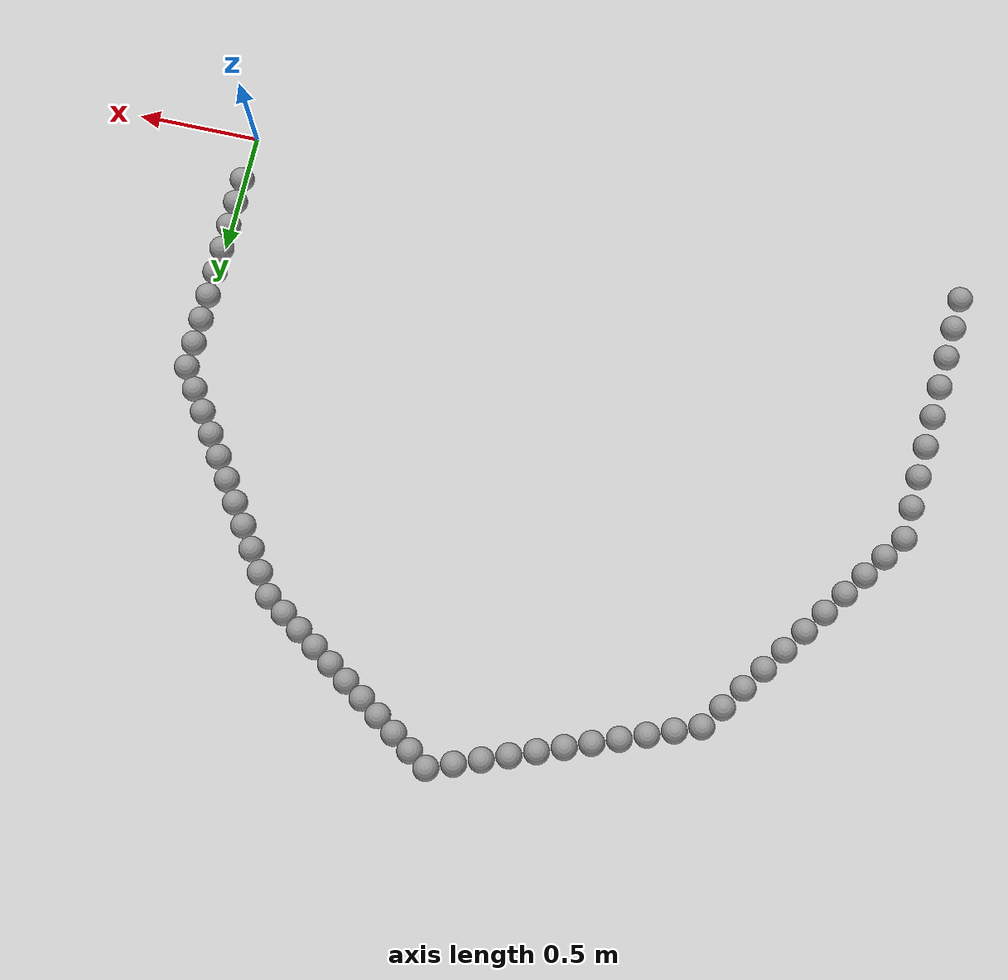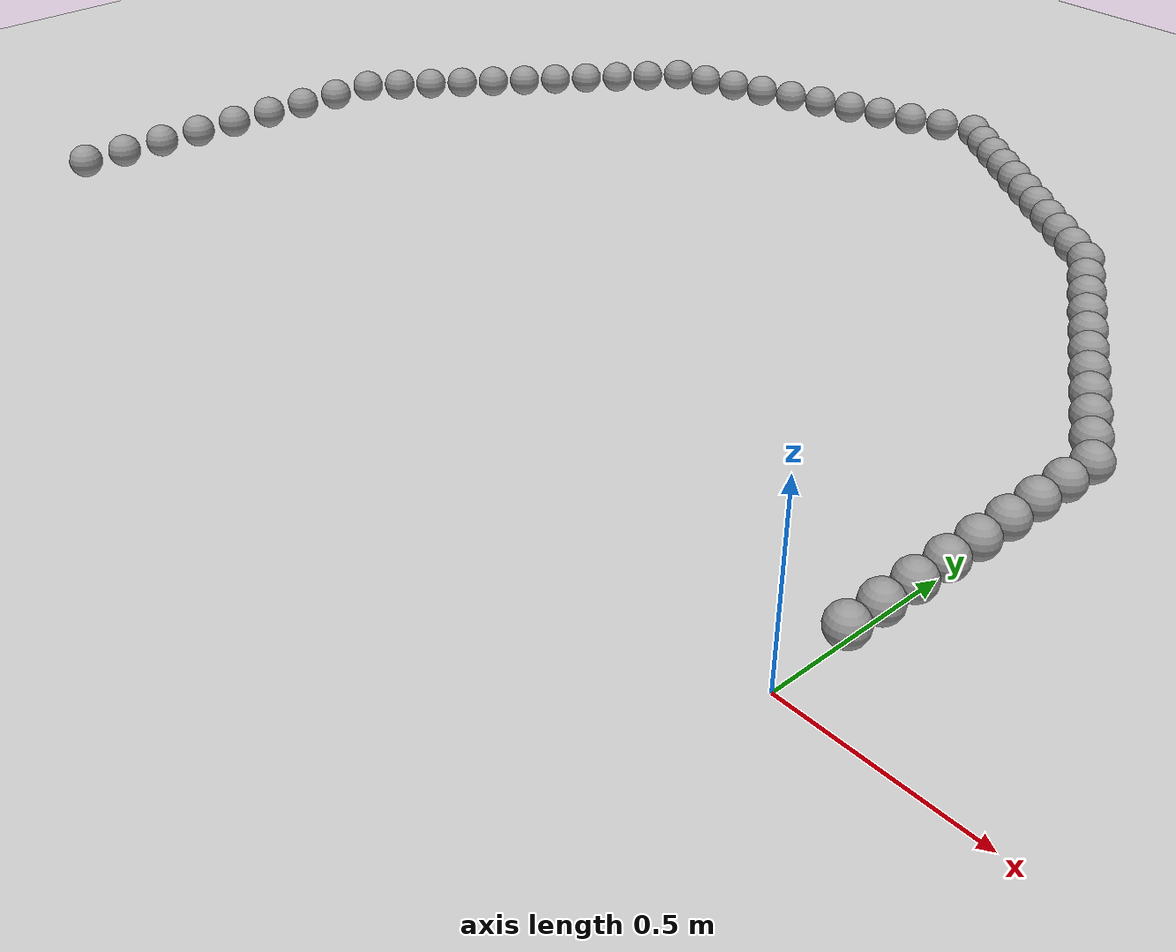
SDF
<sdf version="1.6">
 <world name="default">
  <model name="ground_plane">
   <static>1</static>
   <link name="link">
    <collision name="collision">
     <geometry><plane><normal>0 0 1</normal><size>100 100</size></plane></geometry>
     <surface><friction><ode><mu>100</mu><mu2>50</mu2></ode></friction></surface>
    </collision>
    <visual name="visual">
     <cast_shadows>0</cast_shadows>
     <geometry><plane><normal>0 0 1</normal><size>100 100</size></plane></geometry>
     <material>
      <script><uri>file://media/materials/scripts/gazebo.material</uri><name>Gazebo/Grey</name></script>
     </material>
    </visual>
   </link>
  </model>
  <model name="unit_sphere_0_2">
   <pose>0.002000 0.208000 0.050000 0 -0 0</pose>
   <link name="link">
    <inertial>
     <mass>1</mass>
     <inertia><ixx>0.1</ixx><ixy>0</ixy><ixz>0</ixz><iyy>0.1</iyy><iyz>0</iyz><izz>0.1</izz></inertia>
    </inertial>
    <collision name="collision"><geometry><sphere><radius>0.050000</radius></sphere></geometry></collision>
    <visual name="visual">
     <geometry><sphere><radius>0.050000</radius></sphere></geometry>
     <material>
      <script><name>Gazebo/Grey</name><uri>file://media/materials/scripts/gazebo.material</uri></script>
     </material>
    </visual>
   </link>
  </model>
  <model name="unit_sphere_0_3">
   <pose>0.003000 0.312000 0.050000 0 -0 0</pose>
   <link name="link">
    <inertial>
     <mass>1</mass>
     <inertia><ixx>0.1</ixx><ixy>0</ixy><ixz>0</ixz><iyy>0.1</iyy><iyz>0</iyz><izz>0.1</izz></inertia>
    </inertial>
    <collision name="collision"><geometry><sphere><radius>0.050000</radius></sphere></geometry></collision>
    <visual name="visual">
     <geometry><sphere><radius>0.050000</radius></sphere></geometry>
     <material>
      <script><name>Gazebo/Grey</name><uri>file://media/materials/scripts/gazebo.material</uri></script>
     </material>
    </visual>
   </link>
  </model>
  <model name="unit_sphere_0_4">
   <pose>0.004000 0.416000 0.050000 0 -0 0</pose>
   <link name="link">
    <inertial>
     <mass>1</mass>
     <inertia><ixx>0.1</ixx><ixy>0</ixy><ixz>0</ixz><iyy>0.1</iyy><iyz>0</iyz><izz>0.1</izz></inertia>
    </inertial>
    <collision name="collision"><geometry><sphere><radius>0.050000</radius></sphere></geometry></collision>
    <visual name="visual">
     <geometry><sphere><radius>0.050000</radius></sphere></geometry>
     <material>
      <script><name>Gazebo/Grey</name><uri>file://media/materials/scripts/gazebo.material</uri></script>
     </material>
    </visual>
   </link>
  </model>
  <model name="unit_sphere_0_5">
   <pose>0.005000 0.520000 0.050000 0 -0 0</pose>
   <link name="link">
    <inertial>
     <mass>1</mass>
     <inertia><ixx>0.1</ixx><ixy>0</ixy><ixz>0</ixz><iyy>0.1</iyy><iyz>0</iyz><izz>0.1</izz></inertia>
    </inertial>
    <collision name="collision"><geometry><sphere><radius>0.050000</radius></sphere></geometry></collision>
    <visual name="visual">
     <geometry><sphere><radius>0.050000</radius></sphere></geometry>
     <material>
      <script><name>Gazebo/Grey</name><uri>file://media/materials/scripts/gazebo.material</uri></script>
     </material>
    </visual>
   </link>
  </model>
  <model name="unit_sphere_0_6">
   <pose>0.006000 0.624000 0.050000 0 -0 0</pose>
   <link name="link">
    <inertial>
     <mass>1</mass>
     <inertia><ixx>0.1</ixx><ixy>0</ixy><ixz>0</ixz><iyy>0.1</iyy><iyz>0</iyz><izz>0.1</izz></inertia>
    </inertial>
    <collision name="collision"><geometry><sphere><radius>0.050000</radius></sphere></geometry></collision>
    <visual name="visual">
     <geometry><sphere><radius>0.050000</radius></sphere></geometry>
     <material>
      <script><name>Gazebo/Grey</name><uri>file://media/materials/scripts/gazebo.material</uri></script>
     </material>
    </visual>
   </link>
  </model>
  <model name="unit_sphere_0_7">
   <pose>0.007000 0.728000 0.050000 0 -0 0</pose>
   <link name="link">
    <inertial>
     <mass>1</mass>
     <inertia><ixx>0.1</ixx><ixy>0</ixy><ixz>0</ixz><iyy>0.1</iyy><iyz>0</iyz><izz>0.1</izz></inertia>
    </inertial>
    <collision name="collision"><geometry><sphere><radius>0.050000</radius></sphere></geometry></collision>
    <visual name="visual">
     <geometry><sphere><radius>0.050000</radius></sphere></geometry>
     <material>
      <script><name>Gazebo/Grey</name><uri>file://media/materials/scripts/gazebo.material</uri></script>
     </material>
    </visual>
   </link>
  </model>
  <model name="unit_sphere_0_8">
   <pose>0.008000 0.832000 0.050000 0 -0 0</pose>
   <link name="link">
    <inertial>
     <mass>1</mass>
     <inertia><ixx>0.1</ixx><ixy>0</ixy><ixz>0</ixz><iyy>0.1</iyy><iyz>0</iyz><izz>0.1</izz></inertia>
    </inertial>
    <collision name="collision"><geometry><sphere><radius>0.050000</radius></sphere></geometry></collision>
    <visual name="visual">
     <geometry><sphere><radius>0.050000</radius></sphere></geometry>
     <material>
      <script><name>Gazebo/Grey</name><uri>file://media/materials/scripts/gazebo.material</uri></script>
     </material>
    </visual>
   </link>
  </model>
  <model name="unit_sphere_0_9">
   <pose>0.009000 0.936000 0.050000 0 -0 0</pose>
   <link name="link">
    <inertial>
     <mass>1</mass>
     <inertia><ixx>0.1</ixx><ixy>0</ixy><ixz>0</ixz><iyy>0.1</iyy><iyz>0</iyz><izz>0.1</izz></inertia>
    </inertial>
    <collision name="collision"><geometry><sphere><radius>0.050000</radius></sphere></geometry></collision>
    <visual name="visual">
     <geometry><sphere><radius>0.050000</radius></sphere></geometry>
     <material>
      <script><name>Gazebo/Grey</name><uri>file://media/materials/scripts/gazebo.material</uri></script>
     </material>
    </visual>
   </link>
  </model>
  <model name="unit_sphere_0_10">
   <pose>0.010000 1.040000 0.050000 0 -0 0</pose>
   <link name="link">
    <inertial>
     <mass>1</mass>
     <inertia><ixx>0.1</ixx><ixy>0</ixy><ixz>0</ixz><iyy>0.1</iyy><iyz>0</iyz><izz>0.1</izz></inertia>
    </inertial>
    <collision name="collision"><geometry><sphere><radius>0.050000</radius></sphere></geometry></collision>
    <visual name="visual">
     <geometry><sphere><radius>0.050000</radius></sphere></geometry>
     <material>
      <script><name>Gazebo/Grey</name><uri>file://media/materials/scripts/gazebo.material</uri></script>
     </material>
    </visual>
   </link>
  </model>
  <model name="unit_sphere_0_11">
   <pose>-0.045000 1.123000 0.050000 0 -0 0</pose>
   <link name="link">
    <inertial>
     <mass>1</mass>
     <inertia><ixx>0.1</ixx><ixy>0</ixy><ixz>0</ixz><iyy>0.1</iyy><iyz>0</iyz><izz>0.1</izz></inertia>
    </inertial>
    <collision name="collision"><geometry><sphere><radius>0.050000</radius></sphere></geometry></collision>
    <visual name="visual">
     <geometry><sphere><radius>0.050000</radius></sphere></geometry>
     <material>
      <script><name>Gazebo/Grey</name><uri>file://media/materials/scripts/gazebo.material</uri></script>
     </material>
    </visual>
   </link>
  </model>
  <model name="unit_sphere_0_12">
   <pose>-0.100000 1.206000 0.050000 0 -0 0</pose>
   <link name="link">
    <inertial>
     <mass>1</mass>
     <inertia><ixx>0.1</ixx><ixy>0</ixy><ixz>0</ixz><iyy>0.1</iyy><iyz>0</iyz><izz>0.1</izz></inertia>
    </inertial>
    <collision name="collision"><geometry><sphere><radius>0.050000</radius></sphere></geometry></collision>
    <visual name="visual">
     <geometry><sphere><radius>0.050000</radius></sphere></geometry>
     <material>
      <script><name>Gazebo/Grey</name><uri>file://media/materials/scripts/gazebo.material</uri></script>
     </material>
    </visual>
   </link>
  </model>
  <model name="unit_sphere_0_13">
   <pose>-0.155000 1.289000 0.050000 0 -0 0</pose>
   <link name="link">
    <inertial>
     <mass>1</mass>
     <inertia><ixx>0.1</ixx><ixy>0</ixy><ixz>0</ixz><iyy>0.1</iyy><iyz>0</iyz><izz>0.1</izz></inertia>
    </inertial>
    <collision name="collision"><geometry><sphere><radius>0.050000</radius></sphere></geometry></collision>
    <visual name="visual">
     <geometry><sphere><radius>0.050000</radius></sphere></geometry>
     <material>
      <script><name>Gazebo/Grey</name><uri>file://media/materials/scripts/gazebo.material</uri></script>
     </material>
    </visual>
   </link>
  </model>
  <model name="unit_sphere_0_14">
   <pose>-0.210000 1.372000 0.050000 0 -0 0</pose>
   <link name="link">
    <inertial>
     <mass>1</mass>
     <inertia><ixx>0.1</ixx><ixy>0</ixy><ixz>0</ixz><iyy>0.1</iyy><iyz>0</iyz><izz>0.1</izz></inertia>
    </inertial>
    <collision name="collision"><geometry><sphere><radius>0.050000</radius></sphere></geometry></collision>
    <visual name="visual">
     <geometry><sphere><radius>0.050000</radius></sphere></geometry>
     <material>
      <script><name>Gazebo/Grey</name><uri>file://media/materials/scripts/gazebo.material</uri></script>
     </material>
    </visual>
   </link>
  </model>
  <model name="unit_sphere_0_15">
   <pose>-0.265000 1.455000 0.050000 0 -0 0</pose>
   <link name="link">
    <inertial>
     <mass>1</mass>
     <inertia><ixx>0.1</ixx><ixy>0</ixy><ixz>0</ixz><iyy>0.1</iyy><iyz>0</iyz><izz>0.1</izz></inertia>
    </inertial>
    <collision name="collision"><geometry><sphere><radius>0.050000</radius></sphere></geometry></collision>
    <visual name="visual">
     <geometry><sphere><radius>0.050000</radius></sphere></geometry>
     <material>
      <script><name>Gazebo/Grey</name><uri>file://media/materials/scripts/gazebo.material</uri></script>
     </material>
    </visual>
   </link>
  </model>
  <model name="unit_sphere_0_16">
   <pose>-0.320000 1.538000 0.050000 0 -0 0</pose>
   <link name="link">
    <inertial>
     <mass>1</mass>
     <inertia><ixx>0.1</ixx><ixy>0</ixy><ixz>0</ixz><iyy>0.1</iyy><iyz>0</iyz><izz>0.1</izz></inertia>
    </inertial>
    <collision name="collision"><geometry><sphere><radius>0.050000</radius></sphere></geometry></collision>
    <visual name="visual">
     <geometry><sphere><radius>0.050000</radius></sphere></geometry>
     <material>
      <script><name>Gazebo/Grey</name><uri>file://media/materials/scripts/gazebo.material</uri></script>
     </material>
    </visual>
   </link>
  </model>
  <model name="unit_sphere_0_17">
   <pose>-0.375000 1.621000 0.050000 0 -0 0</pose>
   <link name="link">
    <inertial>
     <mass>1</mass>
     <inertia><ixx>0.1</ixx><ixy>0</ixy><ixz>0</ixz><iyy>0.1</iyy><iyz>0</iyz><izz>0.1</izz></inertia>
    </inertial>
    <collision name="collision"><geometry><sphere><radius>0.050000</radius></sphere></geometry></collision>
    <visual name="visual">
     <geometry><sphere><radius>0.050000</radius></sphere></geometry>
     <material>
      <script><name>Gazebo/Grey</name><uri>file://media/materials/scripts/gazebo.material</uri></script>
     </material>
    </visual>
   </link>
  </model>
  <model name="unit_sphere_0_18">
   <pose>-0.430000 1.704000 0.050000 0 -0 0</pose>
   <link name="link">
    <inertial>
     <mass>1</mass>
     <inertia><ixx>0.1</ixx><ixy>0</ixy><ixz>0</ixz><iyy>0.1</iyy><iyz>0</iyz><izz>0.1</izz></inertia>
    </inertial>
    <collision name="collision"><geometry><sphere><radius>0.050000</radius></sphere></geometry></collision>
    <visual name="visual">
     <geometry><sphere><radius>0.050000</radius></sphere></geometry>
     <material>
      <script><name>Gazebo/Grey</name><uri>file://media/materials/scripts/gazebo.material</uri></script>
     </material>
    </visual>
   </link>
  </model>
  <model name="unit_sphere_0_19">
   <pose>-0.485000 1.787000 0.050000 0 -0 0</pose>
   <link name="link">
    <inertial>
     <mass>1</mass>
     <inertia><ixx>0.1</ixx><ixy>0</ixy><ixz>0</ixz><iyy>0.1</iyy><iyz>0</iyz><izz>0.1</izz></inertia>
    </inertial>
    <collision name="collision"><geometry><sphere><radius>0.050000</radius></sphere></geometry></collision>
    <visual name="visual">
     <geometry><sphere><radius>0.050000</radius></sphere></geometry>
     <material>
      <script><name>Gazebo/Grey</name><uri>file://media/materials/scripts/gazebo.material</uri></script>
     </material>
    </visual>
   </link>
  </model>
  <model name="unit_sphere_0_20">
   <pose>-0.540000 1.870000 0.050000 0 -0 0</pose>
   <link name="link">
    <inertial>
     <mass>1</mass>
     <inertia><ixx>0.1</ixx><ixy>0</ixy><ixz>0</ixz><iyy>0.1</iyy><iyz>0</iyz><izz>0.1</izz></inertia>
    </inertial>
    <collision name="collision"><geometry><sphere><radius>0.050000</radius></sphere></geometry></collision>
    <visual name="visual">
     <geometry><sphere><radius>0.050000</radius></sphere></geometry>
     <material>
      <script><name>Gazebo/Grey</name><uri>file://media/materials/scripts/gazebo.material</uri></script>
     </material>
    </visual>
   </link>
  </model>
  <model name="unit_sphere_0_21">
   <pose>-0.614000 1.921000 0.050000 0 -0 0</pose>
   <link name="link">
    <inertial>
     <mass>1</mass>
     <inertia><ixx>0.1</ixx><ixy>0</ixy><ixz>0</ixz><iyy>0.1</iyy><iyz>0</iyz><izz>0.1</izz></inertia>
    </inertial>
    <collision name="collision"><geometry><sphere><radius>0.050000</radius></sphere></geometry></collision>
    <visual name="visual">
     <geometry><sphere><radius>0.050000</radius></sphere></geometry>
     <material>
      <script><name>Gazebo/Grey</name><uri>file://media/materials/scripts/gazebo.material</uri></script>
     </material>
    </visual>
   </link>
  </model>
  <model name="unit_sphere_0_22">
   <pose>-0.688000 1.972000 0.050000 0 -0 0</pose>
   <link name="link">
    <inertial>
     <mass>1</mass>
     <inertia><ixx>0.1</ixx><ixy>0</ixy><ixz>0</ixz><iyy>0.1</iyy><iyz>0</iyz><izz>0.1</izz></inertia>
    </inertial>
    <collision name="collision"><geometry><sphere><radius>0.050000</radius></sphere></geometry></collision>
    <visual name="visual">
     <geometry><sphere><radius>0.050000</radius></sphere></geometry>
     <material>
      <script><name>Gazebo/Grey</name><uri>file://media/materials/scripts/gazebo.material</uri></script>
     </material>
    </visual>
   </link>
  </model>
  <model name="unit_sphere_0_23">
   <pose>-0.762000 2.023000 0.050000 0 -0 0</pose>
   <link name="link">
    <inertial>
     <mass>1</mass>
     <inertia><ixx>0.1</ixx><ixy>0</ixy><ixz>0</ixz><iyy>0.1</iyy><iyz>0</iyz><izz>0.1</izz></inertia>
    </inertial>
    <collision name="collision"><geometry><sphere><radius>0.050000</radius></sphere></geometry></collision>
    <visual name="visual">
     <geometry><sphere><radius>0.050000</radius></sphere></geometry>
     <material>
      <script><name>Gazebo/Grey</name><uri>file://media/materials/scripts/gazebo.material</uri></script>
     </material>
    </visual>
   </link>
  </model>
  <model name="unit_sphere_0_24">
   <pose>-0.836000 2.074000 0.050000 0 -0 0</pose>
   <link name="link">
    <inertial>
     <mass>1</mass>
     <inertia><ixx>0.1</ixx><ixy>0</ixy><ixz>0</ixz><iyy>0.1</iyy><iyz>0</iyz><izz>0.1</izz></inertia>
    </inertial>
    <collision name="collision"><geometry><sphere><radius>0.050000</radius></sphere></geometry></collision>
    <visual name="visual">
     <geometry><sphere><radius>0.050000</radius></sphere></geometry>
     <material>
      <script><name>Gazebo/Grey</name><uri>file://media/materials/scripts/gazebo.material</uri></script>
     </material>
    </visual>
   </link>
  </model>
  <model name="unit_sphere_0_25">
   <pose>-0.910000 2.125000 0.050000 0 -0 0</pose>
   <link name="link">
    <inertial>
     <mass>1</mass>
     <inertia><ixx>0.1</ixx><ixy>0</ixy><ixz>0</ixz><iyy>0.1</iyy><iyz>0</iyz><izz>0.1</izz></inertia>
    </inertial>
    <collision name="collision"><geometry><sphere><radius>0.050000</radius></sphere></geometry></collision>
    <visual name="visual">
     <geometry><sphere><radius>0.050000</radius></sphere></geometry>
     <material>
      <script><name>Gazebo/Grey</name><uri>file://media/materials/scripts/gazebo.material</uri></script>
     </material>
    </visual>
   </link>
  </model>
  <model name="unit_sphere_0_26">
   <pose>-0.984000 2.176000 0.050000 0 -0 0</pose>
   <link name="link">
    <inertial>
     <mass>1</mass>
     <inertia><ixx>0.1</ixx><ixy>0</ixy><ixz>0</ixz><iyy>0.1</iyy><iyz>0</iyz><izz>0.1</izz></inertia>
    </inertial>
    <collision name="collision"><geometry><sphere><radius>0.050000</radius></sphere></geometry></collision>
    <visual name="visual">
     <geometry><sphere><radius>0.050000</radius></sphere></geometry>
     <material>
      <script><name>Gazebo/Grey</name><uri>file://media/materials/scripts/gazebo.material</uri></script>
     </material>
    </visual>
   </link>
  </model>
  <model name="unit_sphere_0_27">
   <pose>-1.058000 2.227000 0.050000 0 -0 0</pose>
   <link name="link">
    <inertial>
     <mass>1</mass>
     <inertia><ixx>0.1</ixx><ixy>0</ixy><ixz>0</ixz><iyy>0.1</iyy><iyz>0</iyz><izz>0.1</izz></inertia>
    </inertial>
    <collision name="collision"><geometry><sphere><radius>0.050000</radius></sphere></geometry></collision>
    <visual name="visual">
     <geometry><sphere><radius>0.050000</radius></sphere></geometry>
     <material>
      <script><name>Gazebo/Grey</name><uri>file://media/materials/scripts/gazebo.material</uri></script>
     </material>
    </visual>
   </link>
  </model>
  <model name="unit_sphere_0_28">
   <pose>-1.132000 2.278000 0.050000 0 -0 0</pose>
   <link name="link">
    <inertial>
     <mass>1</mass>
     <inertia><ixx>0.1</ixx><ixy>0</ixy><ixz>0</ixz><iyy>0.1</iyy><iyz>0</iyz><izz>0.1</izz></inertia>
    </inertial>
    <collision name="collision"><geometry><sphere><radius>0.050000</radius></sphere></geometry></collision>
    <visual name="visual">
     <geometry><sphere><radius>0.050000</radius></sphere></geometry>
     <material>
      <script><name>Gazebo/Grey</name><uri>file://media/materials/scripts/gazebo.material</uri></script>
     </material>
    </visual>
   </link>
  </model>
  <model name="unit_sphere_0_29">
   <pose>-1.206000 2.329000 0.050000 0 -0 0</pose>
   <link name="link">
    <inertial>
     <mass>1</mass>
     <inertia><ixx>0.1</ixx><ixy>0</ixy><ixz>0</ixz><iyy>0.1</iyy><iyz>0</iyz><izz>0.1</izz></inertia>
    </inertial>
    <collision name="collision"><geometry><sphere><radius>0.050000</radius></sphere></geometry></collision>
    <visual name="visual">
     <geometry><sphere><radius>0.050000</radius></sphere></geometry>
     <material>
      <script><name>Gazebo/Grey</name><uri>file://media/materials/scripts/gazebo.material</uri></script>
     </material>
    </visual>
   </link>
  </model>
  <model name="unit_sphere_0_30">
   <pose>-1.280000 2.380000 0.050000 0 -0 0</pose>
   <link name="link">
    <inertial>
     <mass>1</mass>
     <inertia><ixx>0.1</ixx><ixy>0</ixy><ixz>0</ixz><iyy>0.1</iyy><iyz>0</iyz><izz>0.1</izz></inertia>
    </inertial>
    <collision name="collision"><geometry><sphere><radius>0.050000</radius></sphere></geometry></collision>
    <visual name="visual">
     <geometry><sphere><radius>0.050000</radius></sphere></geometry>
     <material>
      <script><name>Gazebo/Grey</name><uri>file://media/materials/scripts/gazebo.material</uri></script>
     </material>
    </visual>
   </link>
  </model>
  <model name="unit_sphere_0_31">
   <pose>-1.378000 2.343000 0.050000 0 -0 0</pose>
   <link name="link">
    <inertial>
     <mass>1</mass>
     <inertia><ixx>0.1</ixx><ixy>0</ixy><ixz>0</ixz><iyy>0.1</iyy><iyz>0</iyz><izz>0.1</izz></inertia>
    </inertial>
    <collision name="collision"><geometry><sphere><radius>0.050000</radius></sphere></geometry></collision>
    <visual name="visual">
     <geometry><sphere><radius>0.050000</radius></sphere></geometry>
     <material>
      <script><name>Gazebo/Grey</name><uri>file://media/materials/scripts/gazebo.material</uri></script>
     </material>
    </visual>
   </link>
  </model>
  <model name="unit_sphere_0_32">
   <pose>-1.476000 2.306000 0.050000 0 -0 0</pose>
   <link name="link">
    <inertial>
     <mass>1</mass>
     <inertia><ixx>0.1</ixx><ixy>0</ixy><ixz>0</ixz><iyy>0.1</iyy><iyz>0</iyz><izz>0.1</izz></inertia>
    </inertial>
    <collision name="collision"><geometry><sphere><radius>0.050000</radius></sphere></geometry></collision>
    <visual name="visual">
     <geometry><sphere><radius>0.050000</radius></sphere></geometry>
     <material>
      <script><name>Gazebo/Grey</name><uri>file://media/materials/scripts/gazebo.material</uri></script>
     </material>
    </visual>
   </link>
  </model>
  <model name="unit_sphere_0_33">
   <pose>-1.574000 2.269000 0.050000 0 -0 0</pose>
   <link name="link">
    <inertial>
     <mass>1</mass>
     <inertia><ixx>0.1</ixx><ixy>0</ixy><ixz>0</ixz><iyy>0.1</iyy><iyz>0</iyz><izz>0.1</izz></inertia>
    </inertial>
    <collision name="collision"><geometry><sphere><radius>0.050000</radius></sphere></geometry></collision>
    <visual name="visual">
     <geometry><sphere><radius>0.050000</radius></sphere></geometry>
     <material>
      <script><name>Gazebo/Grey</name><uri>file://media/materials/scripts/gazebo.material</uri></script>
     </material>
    </visual>
   </link>
  </model>
  <model name="unit_sphere_0_34">
   <pose>-1.672000 2.232000 0.050000 0 -0 0</pose>
   <link name="link">
    <inertial>
     <mass>1</mass>
     <inertia><ixx>0.1</ixx><ixy>0</ixy><ixz>0</ixz><iyy>0.1</iyy><iyz>0</iyz><izz>0.1</izz></inertia>
    </inertial>
    <collision name="collision"><geometry><sphere><radius>0.050000</radius></sphere></geometry></collision>
    <visual name="visual">
     <geometry><sphere><radius>0.050000</radius></sphere></geometry>
     <material>
      <script><name>Gazebo/Grey</name><uri>file://media/materials/scripts/gazebo.material</uri></script>
     </material>
    </visual>
   </link>
  </model>
  <model name="unit_sphere_0_35">
   <pose>-1.770000 2.195000 0.050000 0 -0 0</pose>
   <link name="link">
    <inertial>
     <mass>1</mass>
     <inertia><ixx>0.1</ixx><ixy>0</ixy><ixz>0</ixz><iyy>0.1</iyy><iyz>0</iyz><izz>0.1</izz></inertia>
    </inertial>
    <collision name="collision"><geometry><sphere><radius>0.050000</radius></sphere></geometry></collision>
    <visual name="visual">
     <geometry><sphere><radius>0.050000</radius></sphere></geometry>
     <material>
      <script><name>Gazebo/Grey</name><uri>file://media/materials/scripts/gazebo.material</uri></script>
     </material>
    </visual>
   </link>
  </model>
  <model name="unit_sphere_0_36">
   <pose>-1.868000 2.158000 0.050000 0 -0 0</pose>
   <link name="link">
    <inertial>
     <mass>1</mass>
     <inertia><ixx>0.1</ixx><ixy>0</ixy><ixz>0</ixz><iyy>0.1</iyy><iyz>0</iyz><izz>0.1</izz></inertia>
    </inertial>
    <collision name="collision"><geometry><sphere><radius>0.050000</radius></sphere></geometry></collision>
    <visual name="visual">
     <geometry><sphere><radius>0.050000</radius></sphere></geometry>
     <material>
      <script><name>Gazebo/Grey</name><uri>file://media/materials/scripts/gazebo.material</uri></script>
     </material>
    </visual>
   </link>
  </model>
  <model name="unit_sphere_0_37">
   <pose>-1.966000 2.121000 0.050000 0 -0 0</pose>
   <link name="link">
    <inertial>
     <mass>1</mass>
     <inertia><ixx>0.1</ixx><ixy>0</ixy><ixz>0</ixz><iyy>0.1</iyy><iyz>0</iyz><izz>0.1</izz></inertia>
    </inertial>
    <collision name="collision"><geometry><sphere><radius>0.050000</radius></sphere></geometry></collision>
    <visual name="visual">
     <geometry><sphere><radius>0.050000</radius></sphere></geometry>
     <material>
      <script><name>Gazebo/Grey</name><uri>file://media/materials/scripts/gazebo.material</uri></script>
     </material>
    </visual>
   </link>
  </model>
  <model name="unit_sphere_0_38">
   <pose>-2.064000 2.084000 0.050000 0 -0 0</pose>
   <link name="link">
    <inertial>
     <mass>1</mass>
     <inertia><ixx>0.1</ixx><ixy>0</ixy><ixz>0</ixz><iyy>0.1</iyy><iyz>0</iyz><izz>0.1</izz></inertia>
    </inertial>
    <collision name="collision"><geometry><sphere><radius>0.050000</radius></sphere></geometry></collision>
    <visual name="visual">
     <geometry><sphere><radius>0.050000</radius></sphere></geometry>
     <material>
      <script><name>Gazebo/Grey</name><uri>file://media/materials/scripts/gazebo.material</uri></script>
     </material>
    </visual>
   </link>
  </model>
  <model name="unit_sphere_0_39">
   <pose>-2.162000 2.047000 0.050000 0 -0 0</pose>
   <link name="link">
    <inertial>
     <mass>1</mass>
     <inertia><ixx>0.1</ixx><ixy>0</ixy><ixz>0</ixz><iyy>0.1</iyy><iyz>0</iyz><izz>0.1</izz></inertia>
    </inertial>
    <collision name="collision"><geometry><sphere><radius>0.050000</radius></sphere></geometry></collision>
    <visual name="visual">
     <geometry><sphere><radius>0.050000</radius></sphere></geometry>
     <material>
      <script><name>Gazebo/Grey</name><uri>file://media/materials/scripts/gazebo.material</uri></script>
     </material>
    </visual>
   </link>
  </model>
  <model name="unit_sphere_0_40">
   <pose>-2.260000 2.010000 0.050000 0 -0 0</pose>
   <link name="link">
    <inertial>
     <mass>1</mass>
     <inertia><ixx>0.1</ixx><ixy>0</ixy><ixz>0</ixz><iyy>0.1</iyy><iyz>0</iyz><izz>0.1</izz></inertia>
    </inertial>
    <collision name="collision"><geometry><sphere><radius>0.050000</radius></sphere></geometry></collision>
    <visual name="visual">
     <geometry><sphere><radius>0.050000</radius></sphere></geometry>
     <material>
      <script><name>Gazebo/Grey</name><uri>file://media/materials/scripts/gazebo.material</uri></script>
     </material>
    </visual>
   </link>
  </model>
  <model name="unit_sphere_0_41">
   <pose>-2.323000 1.922000 0.050000 0 -0 0</pose>
   <link name="link">
    <inertial>
     <mass>1</mass>
     <inertia><ixx>0.1</ixx><ixy>0</ixy><ixz>0</ixz><iyy>0.1</iyy><iyz>0</iyz><izz>0.1</izz></inertia>
    </inertial>
    <collision name="collision"><geometry><sphere><radius>0.050000</radius></sphere></geometry></collision>
    <visual name="visual">
     <geometry><sphere><radius>0.050000</radius></sphere></geometry>
     <material>
      <script><name>Gazebo/Grey</name><uri>file://media/materials/scripts/gazebo.material</uri></script>
     </material>
    </visual>
   </link>
  </model>
  <model name="unit_sphere_0_42">
   <pose>-2.386000 1.834000 0.050000 0 -0 0</pose>
   <link name="link">
    <inertial>
     <mass>1</mass>
     <inertia><ixx>0.1</ixx><ixy>0</ixy><ixz>0</ixz><iyy>0.1</iyy><iyz>0</iyz><izz>0.1</izz></inertia>
    </inertial>
    <collision name="collision"><geometry><sphere><radius>0.050000</radius></sphere></geometry></collision>
    <visual name="visual">
     <geometry><sphere><radius>0.050000</radius></sphere></geometry>
     <material>
      <script><name>Gazebo/Grey</name><uri>file://media/materials/scripts/gazebo.material</uri></script>
     </material>
    </visual>
   </link>
  </model>
  <model name="unit_sphere_0_43">
   <pose>-2.449000 1.746000 0.050000 0 -0 0</pose>
   <link name="link">
    <inertial>
     <mass>1</mass>
     <inertia><ixx>0.1</ixx><ixy>0</ixy><ixz>0</ixz><iyy>0.1</iyy><iyz>0</iyz><izz>0.1</izz></inertia>
    </inertial>
    <collision name="collision"><geometry><sphere><radius>0.050000</radius></sphere></geometry></collision>
    <visual name="visual">
     <geometry><sphere><radius>0.050000</radius></sphere></geometry>
     <material>
      <script><name>Gazebo/Grey</name><uri>file://media/materials/scripts/gazebo.material</uri></script>
     </material>
    </visual>
   </link>
  </model>
  <model name="unit_sphere_0_44">
   <pose>-2.512000 1.658000 0.050000 0 -0 0</pose>
   <link name="link">
    <inertial>
     <mass>1</mass>
     <inertia><ixx>0.1</ixx><ixy>0</ixy><ixz>0</ixz><iyy>0.1</iyy><iyz>0</iyz><izz>0.1</izz></inertia>
    </inertial>
    <collision name="collision"><geometry><sphere><radius>0.050000</radius></sphere></geometry></collision>
    <visual name="visual">
     <geometry><sphere><radius>0.050000</radius></sphere></geometry>
     <material>
      <script><name>Gazebo/Grey</name><uri>file://media/materials/scripts/gazebo.material</uri></script>
     </material>
    </visual>
   </link>
  </model>
  <model name="unit_sphere_0_45">
   <pose>-2.575000 1.570000 0.050000 0 -0 0</pose>
   <link name="link">
    <inertial>
     <mass>1</mass>
     <inertia><ixx>0.1</ixx><ixy>0</ixy><ixz>0</ixz><iyy>0.1</iyy><iyz>0</iyz><izz>0.1</izz></inertia>
    </inertial>
    <collision name="collision"><geometry><sphere><radius>0.050000</radius></sphere></geometry></collision>
    <visual name="visual">
     <geometry><sphere><radius>0.050000</radius></sphere></geometry>
     <material>
      <script><name>Gazebo/Grey</name><uri>file://media/materials/scripts/gazebo.material</uri></script>
     </material>
    </visual>
   </link>
  </model>
  <model name="unit_sphere_0_46">
   <pose>-2.638000 1.482000 0.050000 0 -0 0</pose>
   <link name="link">
    <inertial>
     <mass>1</mass>
     <inertia><ixx>0.1</ixx><ixy>0</ixy><ixz>0</ixz><iyy>0.1</iyy><iyz>0</iyz><izz>0.1</izz></inertia>
    </inertial>
    <collision name="collision"><geometry><sphere><radius>0.050000</radius></sphere></geometry></collision>
    <visual name="visual">
     <geometry><sphere><radius>0.050000</radius></sphere></geometry>
     <material>
      <script><name>Gazebo/Grey</name><uri>file://media/materials/scripts/gazebo.material</uri></script>
     </material>
    </visual>
   </link>
  </model>
  <model name="unit_sphere_0_47">
   <pose>-2.701000 1.394000 0.050000 0 -0 0</pose>
   <link name="link">
    <inertial>
     <mass>1</mass>
     <inertia><ixx>0.1</ixx><ixy>0</ixy><ixz>0</ixz><iyy>0.1</iyy><iyz>0</iyz><izz>0.1</izz></inertia>
    </inertial>
    <collision name="collision"><geometry><sphere><radius>0.050000</radius></sphere></geometry></collision>
    <visual name="visual">
     <geometry><sphere><radius>0.050000</radius></sphere></geometry>
     <material>
      <script><name>Gazebo/Grey</name><uri>file://media/materials/scripts/gazebo.material</uri></script>
     </material>
    </visual>
   </link>
  </model>
  <model name="unit_sphere_0_48">
   <pose>-2.764000 1.306000 0.050000 0 -0 0</pose>
   <link name="link">
    <inertial>
     <mass>1</mass>
     <inertia><ixx>0.1</ixx><ixy>0</ixy><ixz>0</ixz><iyy>0.1</iyy><iyz>0</iyz><izz>0.1</izz></inertia>
    </inertial>
    <collision name="collision"><geometry><sphere><radius>0.050000</radius></sphere></geometry></collision>
    <visual name="visual">
     <geometry><sphere><radius>0.050000</radius></sphere></geometry>
     <material>
      <script><name>Gazebo/Grey</name><uri>file://media/materials/scripts/gazebo.material</uri></script>
     </material>
    </visual>
   </link>
  </model>
  <model name="unit_sphere_0_49">
   <pose>-2.827000 1.218000 0.050000 0 -0 0</pose>
   <link name="link">
    <inertial>
     <mass>1</mass>
     <inertia><ixx>0.1</ixx><ixy>0</ixy><ixz>0</ixz><iyy>0.1</iyy><iyz>0</iyz><izz>0.1</izz></inertia>
    </inertial>
    <collision name="collision"><geometry><sphere><radius>0.050000</radius></sphere></geometry></collision>
    <visual name="visual">
     <geometry><sphere><radius>0.050000</radius></sphere></geometry>
     <material>
      <script><name>Gazebo/Grey</name><uri>file://media/materials/scripts/gazebo.material</uri></script>
     </material>
    </visual>
   </link>
  </model>
  <model name="unit_sphere_0_50">
   <pose>-2.890000 1.130000 0.050000 0 -0 0</pose>
   <link name="link">
    <inertial>
     <mass>1</mass>
     <inertia><ixx>0.1</ixx><ixy>0</ixy><ixz>0</ixz><iyy>0.1</iyy><iyz>0</iyz><izz>0.1</izz></inertia>
    </inertial>
    <collision name="collision"><geometry><sphere><radius>0.050000</radius></sphere></geometry></collision>
    <visual name="visual">
     <geometry><sphere><radius>0.050000</radius></sphere></geometry>
     <material>
      <script><name>Gazebo/Grey</name><uri>file://media/materials/scripts/gazebo.material</uri></script>
     </material>
    </visual>
   </link>
  </model>
  <model name="unit_sphere_0_51">
   <pose>-2.898000 1.002000 0.050000 0 -0 0</pose>
   <link name="link">
    <inertial>
     <mass>1</mass>
     <inertia><ixx>0.1</ixx><ixy>0</ixy><ixz>0</ixz><iyy>0.1</iyy><iyz>0</iyz><izz>0.1</izz></inertia>
    </inertial>
    <collision name="collision"><geometry><sphere><radius>0.050000</radius></sphere></geometry></collision>
    <visual name="visual">
     <geometry><sphere><radius>0.050000</radius></sphere></geometry>
     <material>
      <script><name>Gazebo/Grey</name><uri>file://media/materials/scripts/gazebo.material</uri></script>
     </material>
    </visual>
   </link>
  </model>
  <model name="unit_sphere_0_52">
   <pose>-2.906000 0.874000 0.050000 0 -0 0</pose>
   <link name="link">
    <inertial>
     <mass>1</mass>
     <inertia><ixx>0.1</ixx><ixy>0</ixy><ixz>0</ixz><iyy>0.1</iyy><iyz>0</iyz><izz>0.1</izz></inertia>
    </inertial>
    <collision name="collision"><geometry><sphere><radius>0.050000</radius></sphere></geometry></collision>
    <visual name="visual">
     <geometry><sphere><radius>0.050000</radius></sphere></geometry>
     <material>
      <script><name>Gazebo/Grey</name><uri>file://media/materials/scripts/gazebo.material</uri></script>
     </material>
    </visual>
   </link>
  </model>
  <model name="unit_sphere_0_53">
   <pose>-2.914000 0.746000 0.050000 0 -0 0</pose>
   <link name="link">
    <inertial>
     <mass>1</mass>
     <inertia><ixx>0.1</ixx><ixy>0</ixy><ixz>0</ixz><iyy>0.1</iyy><iyz>0</iyz><izz>0.1</izz></inertia>
    </inertial>
    <collision name="collision"><geometry><sphere><radius>0.050000</radius></sphere></geometry></collision>
    <visual name="visual">
     <geometry><sphere><radius>0.050000</radius></sphere></geometry>
     <material>
      <script><name>Gazebo/Grey</name><uri>file://media/materials/scripts/gazebo.material</uri></script>
     </material>
    </visual>
   </link>
  </model>
  <model name="unit_sphere_0_54">
   <pose>-2.922000 0.618000 0.050000 0 -0 0</pose>
   <link name="link">
    <inertial>
     <mass>1</mass>
     <inertia><ixx>0.1</ixx><ixy>0</ixy><ixz>0</ixz><iyy>0.1</iyy><iyz>0</iyz><izz>0.1</izz></inertia>
    </inertial>
    <collision name="collision"><geometry><sphere><radius>0.050000</radius></sphere></geometry></collision>
    <visual name="visual">
     <geometry><sphere><radius>0.050000</radius></sphere></geometry>
     <material>
      <script><name>Gazebo/Grey</name><uri>file://media/materials/scripts/gazebo.material</uri></script>
     </material>
    </visual>
   </link>
  </model>
  <model name="unit_sphere_0_55">
   <pose>-2.930000 0.490000 0.050000 0 -0 0</pose>
   <link name="link">
    <inertial>
     <mass>1</mass>
     <inertia><ixx>0.1</ixx><ixy>0</ixy><ixz>0</ixz><iyy>0.1</iyy><iyz>0</iyz><izz>0.1</izz></inertia>
    </inertial>
    <collision name="collision"><geometry><sphere><radius>0.050000</radius></sphere></geometry></collision>
    <visual name="visual">
     <geometry><sphere><radius>0.050000</radius></sphere></geometry>
     <material>
      <script><name>Gazebo/Grey</name><uri>file://media/materials/scripts/gazebo.material</uri></script>
     </material>
    </visual>
   </link>
  </model>
  <model name="unit_sphere_0_56">
   <pose>-2.938000 0.362000 0.050000 0 -0 0</pose>
   <link name="link">
    <inertial>
     <mass>1</mass>
     <inertia><ixx>0.1</ixx><ixy>0</ixy><ixz>0</ixz><iyy>0.1</iyy><iyz>0</iyz><izz>0.1</izz></inertia>
    </inertial>
    <collision name="collision"><geometry><sphere><radius>0.050000</radius></sphere></geometry></collision>
    <visual name="visual">
     <geometry><sphere><radius>0.050000</radius></sphere></geometry>
     <material>
      <script><name>Gazebo/Grey</name><uri>file://media/materials/scripts/gazebo.material</uri></script>
     </material>
    </visual>
   </link>
  </model>
  <model name="unit_sphere_0_57">
   <pose>-2.946000 0.234000 0.050000 0 -0 0</pose>
   <link name="link">
    <inertial>
     <mass>1</mass>
     <inertia><ixx>0.1</ixx><ixy>0</ixy><ixz>0</ixz><iyy>0.1</iyy><iyz>0</iyz><izz>0.1</izz></inertia>
    </inertial>
    <collision name="collision"><geometry><sphere><radius>0.050000</radius></sphere></geometry></collision>
    <visual name="visual">
     <geometry><sphere><radius>0.050000</radius></sphere></geometry>
     <material>
      <script><name>Gazebo/Grey</name><uri>file://media/materials/scripts/gazebo.material</uri></script>
     </material>
    </visual>
   </link>
  </model>
  <model name="unit_sphere_0_58">
   <pose>-2.954000 0.106000 0.050000 0 -0 0</pose>
   <link name="link">
    <inertial>
     <mass>1</mass>
     <inertia><ixx>0.1</ixx><ixy>0</ixy><ixz>0</ixz><iyy>0.1</iyy><iyz>0</iyz><izz>0.1</izz></inertia>
    </inertial>
    <collision name="collision"><geometry><sphere><radius>0.050000</radius></sphere></geometry></collision>
    <visual name="visual">
     <geometry><sphere><radius>0.050000</radius></sphere></geometry>
     <material>
      <script><name>Gazebo/Grey</name><uri>file://media/materials/scripts/gazebo.material</uri></script>
     </material>
    </visual>
   </link>
  </model>
 </world>
</sdf>
